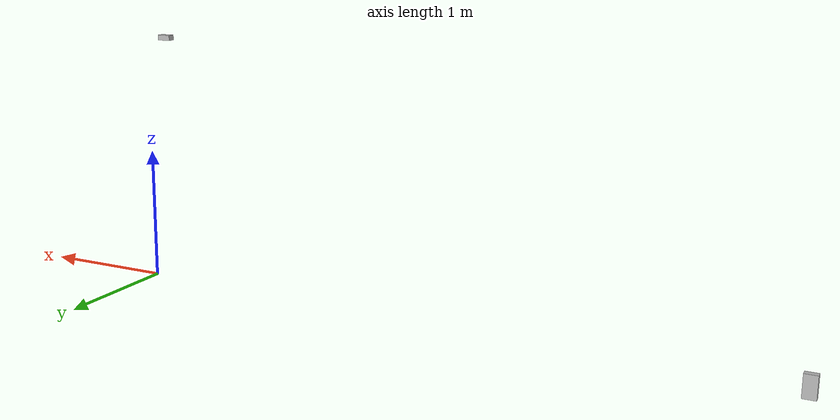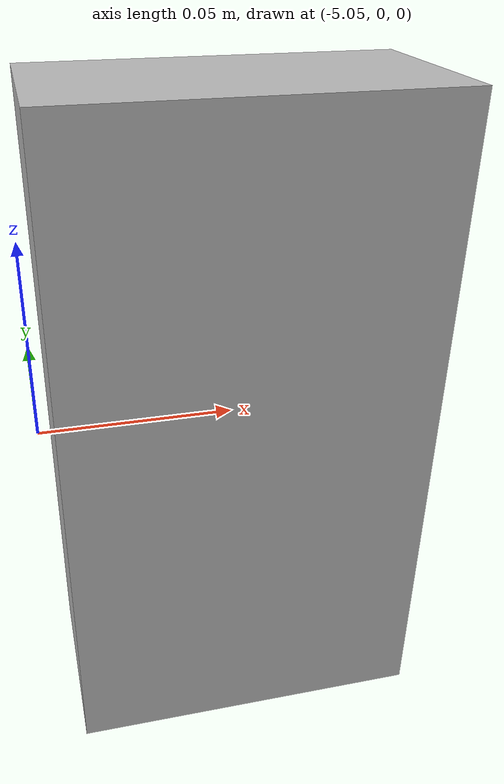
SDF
<?xml version="1.0" ?>
<sdf version="1.5">
  <world name="ariac">
    <!-- Set the initial camera pose to be looking at the workspace. -->
    <gui>
      <camera name="user_camera">
        <pose>-4.33 1.88 6.11 0 0.9 -0.27</pose>
      </camera>
    </gui>

    <!-- Disable shadows. -->
    <scene>
      <shadows>false</shadows>
    </scene>

    <!-- A global light source -->
    <include>
      <uri>model://sun</uri>
    </include>

    <model name="test_model">
      <pose>-5 0 0 0 0 0</pose>
      <link name="link">
        <gravity>false</gravity>
        <visual name="body">
          <geometry>
            <box>
              <size>0.093 0.05 0.167</size>
            </box>
          </geometry>
        </visual>
      </link>
    </model>

    <!-- a logical camera called logical_camera -->
    <model name="logical_camera">
      <pose>-0.3 0.15 1.92 0.0 1.57079632679 0.0</pose>
      <link name="link">
        <gravity>false</gravity>
        <inertial>
          <mass>0.1</mass>
          <inertia>
            <ixx>0.000166667</ixx>
            <iyy>0.000166667</iyy>
            <izz>0.000166667</izz>
          </inertia>
        </inertial>

        <collision name="box_collision">
          <pose>0 0.0009 -0.00203 0 0 -1.5708</pose>
          <geometry>
            <box>
              <size>0.0549 0.0382 0.1</size>
            </box>
          </geometry>
        </collision>

        <visual name="visual">
          <pose>0 0.02 0 0 0 -1.5708</pose>
          <geometry>
            <box>
              <size>0.0549 0.0382 0.1</size>
            </box>
          </geometry>
        </visual>

        <sensor name="logical_camera" type="logical_camera">
          <logical_camera>
            <near>0.55</near>
            <far>5</far>
            <horizontal_fov>1.04719755</horizontal_fov>
            <aspect_ratio>1.778</aspect_ratio>
          </logical_camera>

          <visualize>true</visualize>
          <always_on>true</always_on>
          <update_rate>10</update_rate>
        </sensor>
      </link>
    </model>
  </world>
</sdf>
